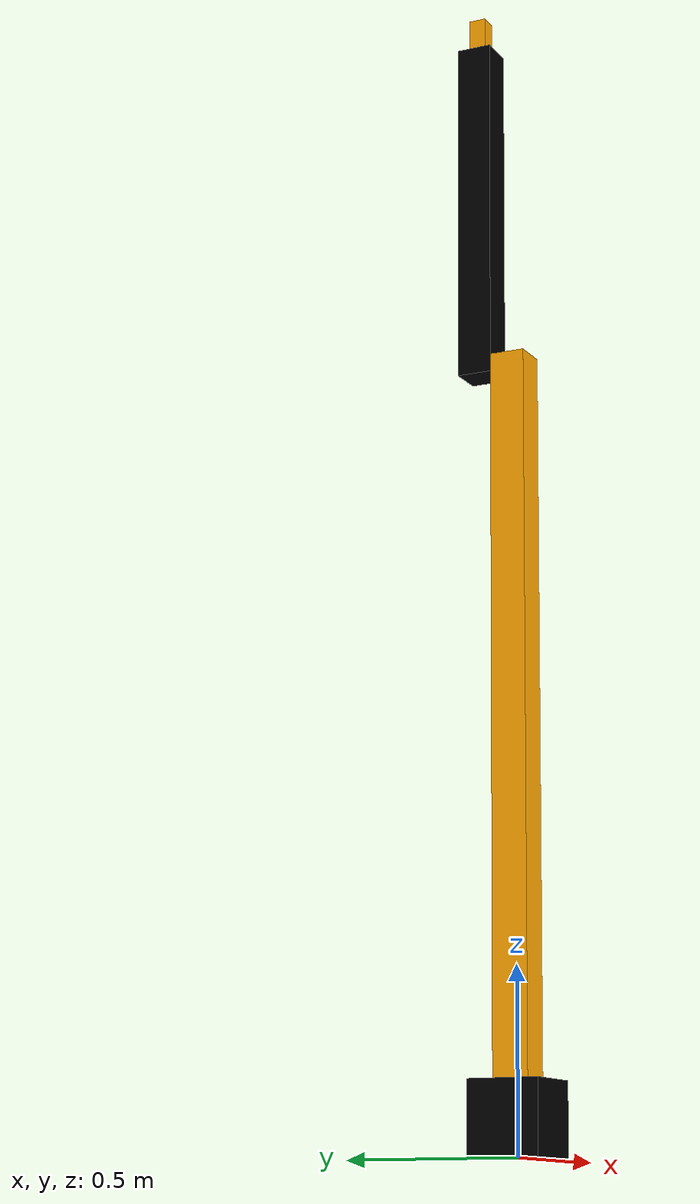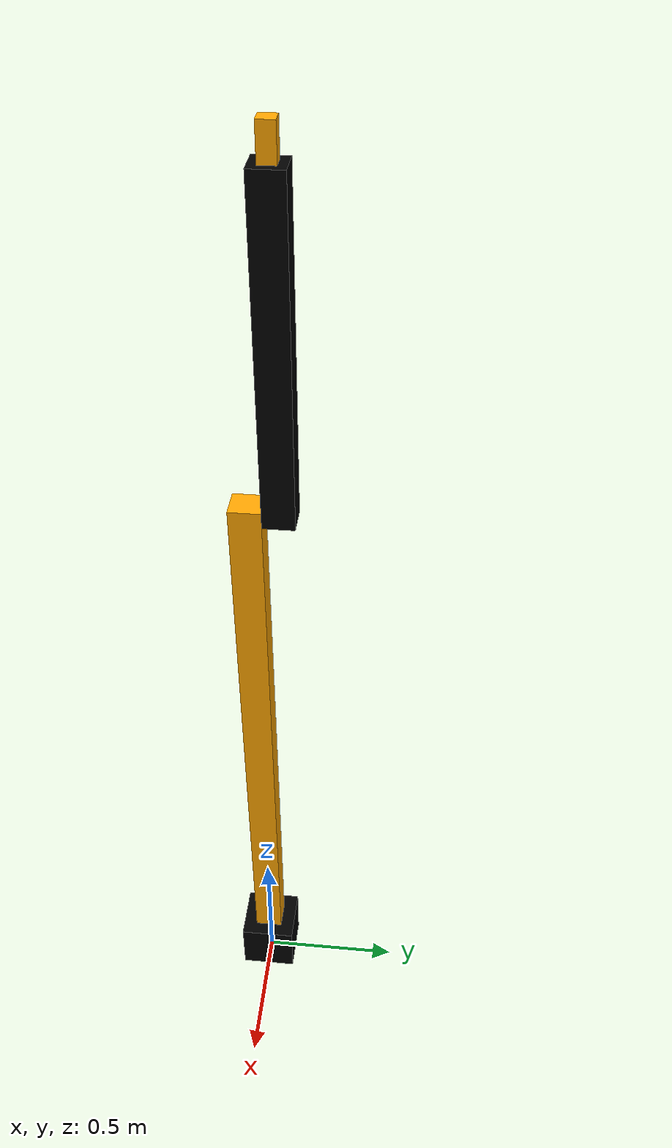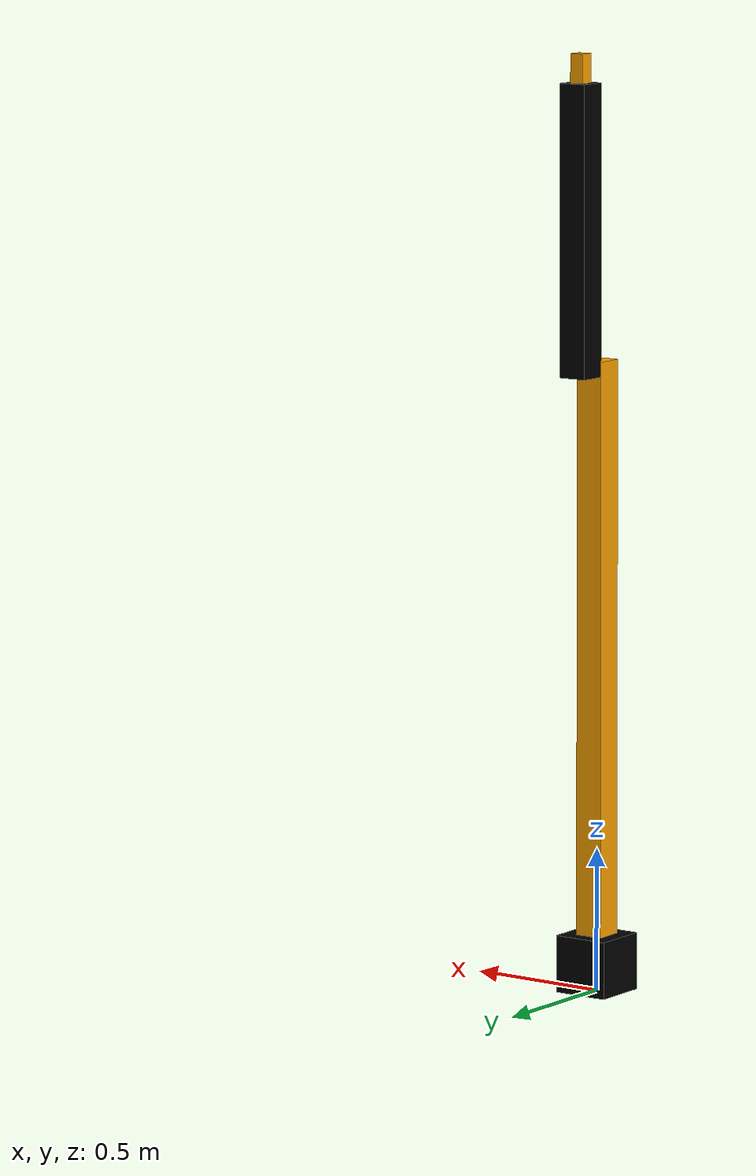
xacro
<?xml version="1.0"?>
<robot name="two_dof_arm" xmlns:xacro="http://www.ros.org/wiki/xacro">

    <!-- Constants -->
    <xacro:property name="PI" value="3.1415926535897931"/>
    <xacro:property name="mass" value="1" /> <!-- Arbitrary mass -->
    <xacro:property name="width" value="0.1" /> <!-- Link width -->
    <xacro:property name="height1" value="2" /> <!-- Link 1 length -->
    <xacro:property name="height2" value="1" /> <!-- Link 2 length -->
    <xacro:property name="axel_offset" value="0.05" /> <!-- Space btw top of beam and the each joint -->

    <!-- Material Definitions -->
    <material name="black">
        <color rgba="0 0 0 1"/>
    </material>
    <material name="orange">
        <color rgba="1 0.65 0 1"/>
    </material>

    <!-- Inertial Matrix Macros -->
    <xacro:macro name="default_inertial" params="mass">
        <inertial>
            <mass value="${mass}" />
            <inertia ixx="1.0" ixy="0.0" ixz="0.0"
                     iyy="1.0" iyz="0.0"
                     izz="1.0" />
        </inertial>
    </xacro:macro>

    <!-- Base Link -->
    <link name="base_link">
        <visual>
            <origin xyz="0 0 0.1" rpy="0 0 0"/>
            <geometry>
                <box size="0.2 0.2 0.2"/>
            </geometry>
            <material name="black"/>
        </visual>
        <collision>
            <origin xyz="0 0 0.1" rpy="0 0 0"/>
            <geometry>
                <box size="0.2 0.2 0.2"/>
            </geometry>
        </collision>
        <xacro:default_inertial mass="10"/>
    </link>

    <!-- Joint 1 -->
    <joint name="joint1" type="revolute">
        <parent link="base_link"/>
        <child link="link1"/>
        <origin xyz="0 0 0.2" rpy="0 0 0"/>
        <axis xyz="0 0 1"/>
        <limit lower="-${PI}" upper="${PI}" effort="100" velocity="1"/>
        <dynamics damping="0.7"/>
    </joint>

    <!-- Link 1 -->
    <link name="link1">
        <visual>
            <origin xyz="0 0 ${height1/2}" rpy="0 0 0"/>
            <geometry>
                <box size="${width} ${width} ${height1}"/>
            </geometry>
            <material name="orange"/>
        </visual>
        <collision>
            <origin xyz="0 0 ${height1/2}" rpy="0 0 0"/>
            <geometry>
                <box size="${width} ${width} ${height1}"/>
            </geometry>
        </collision>
        <xacro:default_inertial mass="${mass}"/>
    </link>

    <!-- Joint 2 -->
    <joint name="joint2" type="revolute">
        <parent link="link1"/>
        <child link="link2"/>
        <origin xyz="0 ${width} ${height1 - axel_offset}" rpy="0 0 0"/>
        <axis xyz="0 1 0"/>
        <limit lower="-${PI/2}" upper="${PI/2}" effort="100" velocity="1"/>
        <dynamics damping="0.7"/>
    </joint>

    <!-- Link 2 -->
    <link name="link2">
        <visual>
            <origin xyz="0 0 ${height2/2}" rpy="0 0 0"/>
            <geometry>
                <box size="${width} ${width} ${height2}"/>
            </geometry>
            <material name="black"/>
        </visual>
        <collision>
            <origin xyz="0 0 ${height2/2}" rpy="0 0 0"/>
            <geometry>
                <box size="${width} ${width} ${height2}"/>
            </geometry>
        </collision>
        <xacro:default_inertial mass="${mass}"/>
    </link>

    <!-- Gripper Joint -->
    <joint name="gripper_joint" type="prismatic">
        <parent link="link2"/>
        <child link="gripper_link"/>
        <origin xyz="0 0 ${height2}" rpy="0 0 0"/>
        <axis xyz="0 1 0"/>
        <limit lower="0" upper="0.05" effort="100" velocity="0.5"/>
    </joint>

    <!-- Gripper Link -->
    <link name="gripper_link">
        <visual>
            <origin xyz="0 0 0.05" rpy="0 0 0"/>
            <geometry>
                <box size="0.05 0.05 0.1"/>
            </geometry>
            <material name="orange"/>
        </visual>
        <collision>
            <origin xyz="0 0 0.05" rpy="0 0 0"/>
            <geometry>
                <box size="0.05 0.05 0.1"/>
            </geometry>
        </collision>
        <xacro:default_inertial mass="0.1"/>
    </link>

    <!-- Transmission for Joint 1 -->
    <transmission name="tran1">
        <type>transmission_interface/SimpleTransmission</type>
        <joint name="joint1">
            <hardwareInterface>hardware_interface/PositionJointInterface</hardwareInterface>
        </joint>
        <actuator name="motor1">
            <hardwareInterface>hardware_interface/PositionJointInterface</hardwareInterface>
            <mechanicalReduction>1</mechanicalReduction>
        </actuator>
    </transmission>

    <!-- Transmission for Joint 2 -->
    <transmission name="tran2">
        <type>transmission_interface/SimpleTransmission</type>
        <joint name="joint2">
            <hardwareInterface>hardware_interface/PositionJointInterface</hardwareInterface>
        </joint>
        <actuator name="motor2">
            <hardwareInterface>hardware_interface/PositionJointInterface</hardwareInterface>
            <mechanicalReduction>1</mechanicalReduction>
        </actuator>
    </transmission>

    <!-- Transmission for Gripper -->
    <transmission name="tran3">
        <type>transmission_interface/SimpleTransmission</type>
        <joint name="gripper_joint">
            <hardwareInterface>hardware_interface/PositionJointInterface</hardwareInterface>
        </joint>
        <actuator name="motor3">
            <hardwareInterface>hardware_interface/PositionJointInterface</hardwareInterface>
            <mechanicalReduction>1</mechanicalReduction>
        </actuator>
    </transmission>

    <!-- Gazebo Plugin -->
    <gazebo>
        <plugin name="gazebo_ros_control" filename="libgazebo_ros_control.so">
            <robotNamespace>/</robotNamespace>
        </plugin>
    </gazebo>

</robot>
